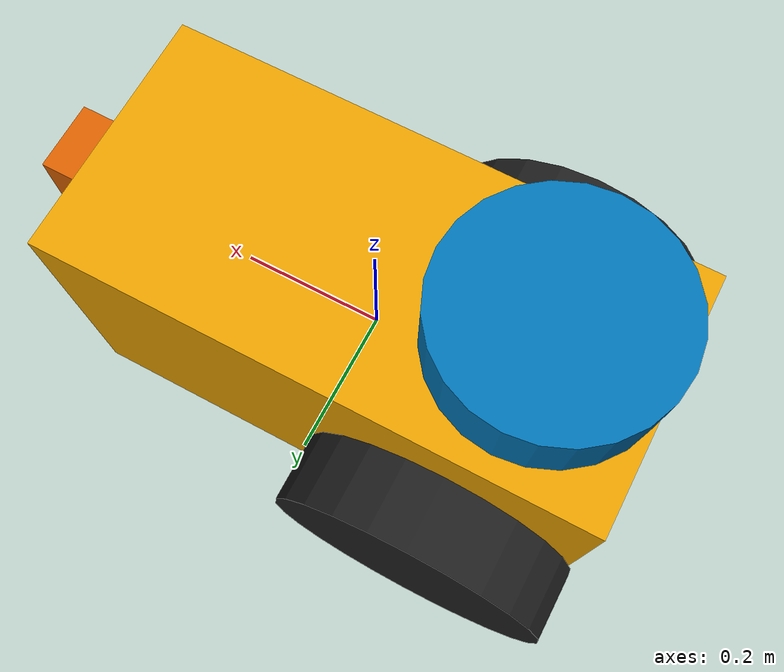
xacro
<?xml version="1.0"?>
<robot xmlns:xacro="http://www.ros.org/wiki/xacro" name="super_robot_4000">

<xacro:property name="wheel_r" value="0.20" />
<xacro:property name="wheel_l" value="0.1" />
<xacro:property name="lidar_r" value="0.15" />
<xacro:property name="lidar_l" value="0.1" />
<xacro:property name="foolish_wheel_r" value="0.09" />
<xacro:property name="body_l" value="0.35" />
<xacro:property name="body_L" value="0.75" />
<xacro:property name="body_h" value="0.4" />

<xacro:property name="body_mass" value="10" />
<xacro:property name="wheel_mass" value="3" />
<xacro:property name="foolish_wheel_mass" value="1" />
<xacro:property name="lidar_mass" value="0.5" />

<xacro:macro name="box_inertia" params="m w h d">
  <inertial>
    <origin xyz="0 0 0" rpy="${pi/2} 0 ${pi/2}"/>
    <mass value="${m}"/>
    <inertia ixx="${(m/12) * (h*h + d*d)}" ixy="0.0" ixz="0.0" iyy="${(m/12) * (w*w + d*d)}" iyz="0.0" izz="${(m/12) * (w*w + h*h)}"/>
  </inertial>
</xacro:macro>

<xacro:macro name="cylinder_inertia" params="m r h">
  <inertial>
    <origin xyz="0 0 0" rpy="${pi/2} 0 0" />
    <mass value="${m}"/>
    <inertia ixx="${(m/12) * (3*r*r + h*h)}" ixy = "0" ixz = "0" iyy="${(m/12) * (3*r*r + h*h)}" iyz = "0" izz="${(m/2) * (r*r)}"/>
  </inertial>
</xacro:macro>

<xacro:macro name="sphere_inertia" params="m r">
  <inertial>
    <mass value="${m}"/>
    <inertia ixx="${(2/5) * m * (r*r)}" ixy="0.0" ixz="0.0" iyy="${(2/5) * m * (r*r)}" iyz="0.0" izz="${(2/5) * m * (r*r)}"/>
  </inertial>
</xacro:macro>

<xacro:macro name="create_link" params="name mass *shape *inertia">
  <link name="${name}">

    <visual>
      <geometry>
        <xacro:insert_block name="shape" />
      </geometry>
    </visual>

    <collision>
      <geometry>
        <xacro:insert_block name="shape" />
      </geometry>
    </collision>

    <xacro:insert_block name="inertia" />

  </link>
</xacro:macro>

<xacro:macro name="create_wheel" params="name mass *shape *inertia">
  <xacro:create_link name="${name}" mass="${mass}">
    <xacro:insert_block name="shape" />
    <xacro:insert_block name="inertia" />
  </xacro:create_link>

  <gazebo reference="${name}">
    <mu1>1.2</mu1>
    <mu2>1.2</mu2>
    <material>Gazebo/FlatBlack</material>
    <kp>500000.0</kp>
    <kd>10.0</kd>
    <minDepth>0.001</minDepth>
    <maxVel>0.1</maxVel>
  </gazebo>
</xacro:macro>

<xacro:create_link name="body" mass="${body_mass}">
  <box size="${body_L} ${body_l} ${body_h} "/>
  <xacro:box_inertia m="${body_mass}" w="${body_l}" d="${body_L}" h="${body_h}" />
</xacro:create_link>

<xacro:create_wheel name="left_wheel" mass="${wheel_mass}">
  <cylinder length="${wheel_l}" radius="${wheel_r}"/>
  <xacro:cylinder_inertia m="${wheel_mass}" r="${wheel_r}" h="${wheel_l}" />
</xacro:create_wheel>

<xacro:create_wheel name="right_wheel" mass="${wheel_mass}">
  <cylinder length="${wheel_l}" radius="${wheel_r}"/>
  <xacro:cylinder_inertia m="${wheel_mass}" r="${wheel_r}" h="${wheel_l}" />
</xacro:create_wheel>

<xacro:create_link name="foolish_wheel" mass="${foolish_wheel_mass}">
  <sphere radius="${foolish_wheel_r}"/>
  <xacro:sphere_inertia m="${foolish_wheel_mass}" r="${foolish_wheel_r}" />
</xacro:create_link>

<gazebo reference="foolish_wheel">
  <mu1>0.01</mu1>
  <mu2>0.01</mu2>
  <material>Gazebo/SkyBlue</material>
  <kp>500000.0</kp>
  <kd>1.0</kd>
  <minDepth>0.001</minDepth>
  <maxVel>0.1</maxVel>
</gazebo>

<link name="lidar">
  <visual>
    <geometry>
      <cylinder length="${lidar_l}" radius="${lidar_r}"/>
    </geometry>
  </visual>
  <xacro:cylinder_inertia m="${lidar_mass}" r="${lidar_r}" h="${lidar_l}" />
</link>

<gazebo reference="lidar">
  <sensor name="sensor_ray" type="ray">

    <visualize>true</visualize>

    <ray>
      <scan>
        <horizontal>
          <samples>360</samples>
          <resolution>1.0</resolution>
          <min_angle>0.</min_angle>
          <max_angle>6.2830</max_angle>
        </horizontal>
        <vertical>
          <samples>1</samples>
          <resolution>1.0</resolution>
          <min_angle>0.</min_angle>
          <max_angle>0.</max_angle>
        </vertical>
      </scan>
      <range>
        <min>0.05</min>
        <max>50.0</max>
      </range>
    </ray>

    <always_on>false</always_on>

    <update_rate>10.0</update_rate>

    <plugin name="laserscan" filename="libgazebo_ros_ray_sensor.so">
      <ros>
        <namespace>/ray</namespace>
        <remapping>~/out:=laserscan</remapping>
      </ros>
      <output_type>sensor_msgs/LaserScan</output_type>
    </plugin>

  </sensor>
</gazebo>

<link name="camera">
  <visual>
    <geometry>
      <box size="0.1 0.1 0.1 "/>
    </geometry>
  </visual>
</link>

<gazebo reference="camera">
  <sensor type="camera" name="camera">
    <update_rate>30.0</update_rate>
    <always_on>true</always_on>
    <visualize>true</visualize>
    <camera name="head">
      <horizontal_fov>1.3962634</horizontal_fov>
      <image>
        <width>720</width>
        <height>480</height>
        <format>R8G8B8</format>
      </image>
    </camera>
    <plugin name="camera_controller" filename="libgazebo_ros_camera.so">
      <alwaysOn>false</alwaysOn>
      <updateRate>1.0</updateRate>
      <cameraName>camera</cameraName>
      <imageTopicName>image_raw</imageTopicName>
      <frameName>camera</frameName>
    </plugin>
  </sensor>
</gazebo>

<joint name="body2left_wheel" type="continuous">
  <parent link="body"/>
  <child link="left_wheel"/>
  <axis xyz="0 0 -1" />
  <origin xyz="-${body_L/4} ${body_l/2+wheel_l/2} -${foolish_wheel_r+body_h/2-wheel_r}" rpy="${pi/2} 0 0"/>
</joint>

<joint name="body2right_wheel" type="continuous">
  <parent link="body"/>
  <child link="right_wheel"/>
  <axis xyz="0 0 -1" />
  <origin xyz="-${body_L/4} -${body_l/2+wheel_l/2} -${foolish_wheel_r+body_h/2-wheel_r}" rpy="${pi/2} 0 0"/>
</joint>

<joint name="body2foolish_wheel" type="continuous">
  <parent link="body"/>
  <child link="foolish_wheel"/>
  <origin xyz="${body_L/4} 0 -${body_h/2}" rpy="0 0 0"/>
</joint>

<joint name="body2lidar" type="fixed">
  <parent link="body"/>
  <child link="lidar"/>
  <origin xyz="-${3*body_L/10} 0 ${body_h/2+lidar_l/2+0.01}" rpy="0 0 0"/>
</joint>

<joint name="body2camera" type="fixed">
  <parent link="body"/>
  <child link="camera"/>
  <origin xyz="${body_L/2+0.05} 0 ${body_h*3/20}" rpy="0 0 0"/>
</joint>

<gazebo>
  <plugin name='diff_drive' filename='libgazebo_ros_diff_drive.so'>

    <update_rate>10</update_rate>

    <!-- wheels -->
    <left_joint>body2left_wheel</left_joint>
    <right_joint>body2right_wheel</right_joint>

    <!-- kinematics -->
    <wheel_separation>${body_l+wheel_l}</wheel_separation>
    <wheel_diameter>${2*wheel_r}</wheel_diameter>

    <!-- limits -->
    <max_wheel_torque>20</max_wheel_torque>
    <max_wheel_acceleration>1.0</max_wheel_acceleration>

    <!-- output -->
    <publish_odom>true</publish_odom>
    <publish_odom_tf>true</publish_odom_tf>
    <publish_wheel_tf>true</publish_wheel_tf>

    <robot_base_frame>body</robot_base_frame>

  </plugin>
</gazebo>

</robot>
